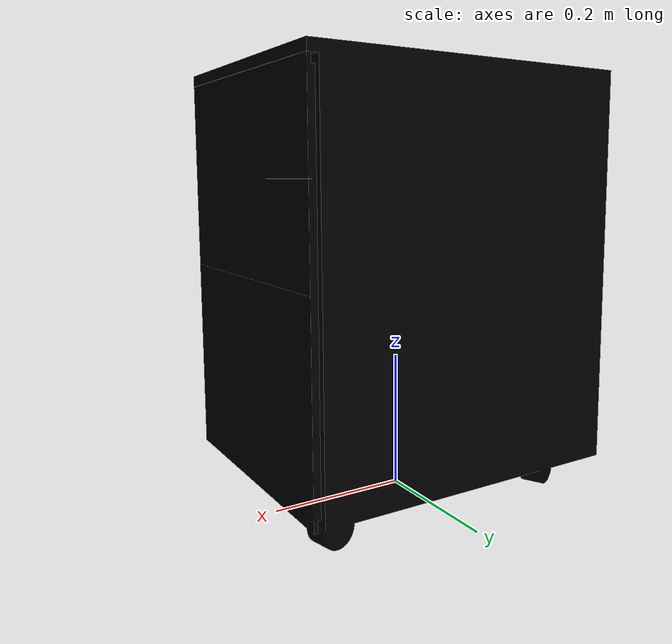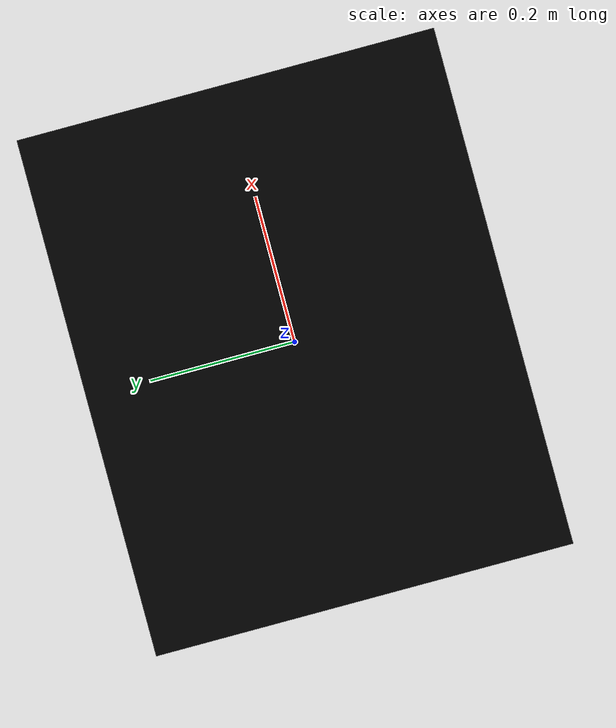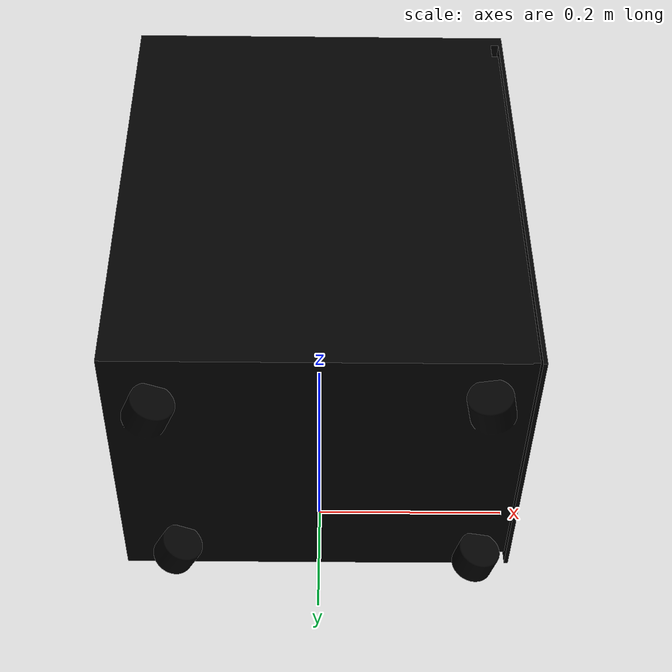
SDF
<sdf version='1.5'>
  <!-- Draw Model -->
  <model name="deskbox">
    <static>false</static>
    <link name="deskbox">
      <collision name="collision">
        <geometry>
          <mesh>
            <uri>model://deskbox/meshes/STL/deskbox.stl</uri>
          </mesh>
        </geometry>
      </collision>

      <visual name="visual">
        <geometry>
          <mesh>
            <uri>model://deskbox/meshes/DAE/deskbox.dae</uri>
          </mesh>
        </geometry>
      </visual>
    </link>
  </model>
</sdf>
